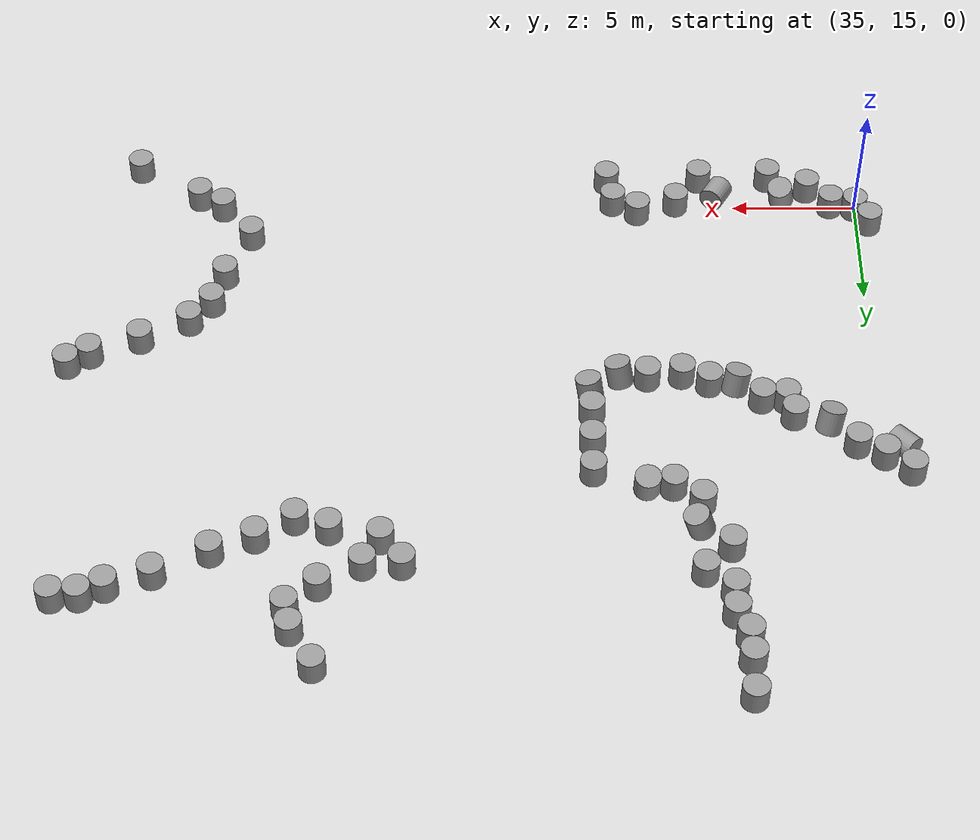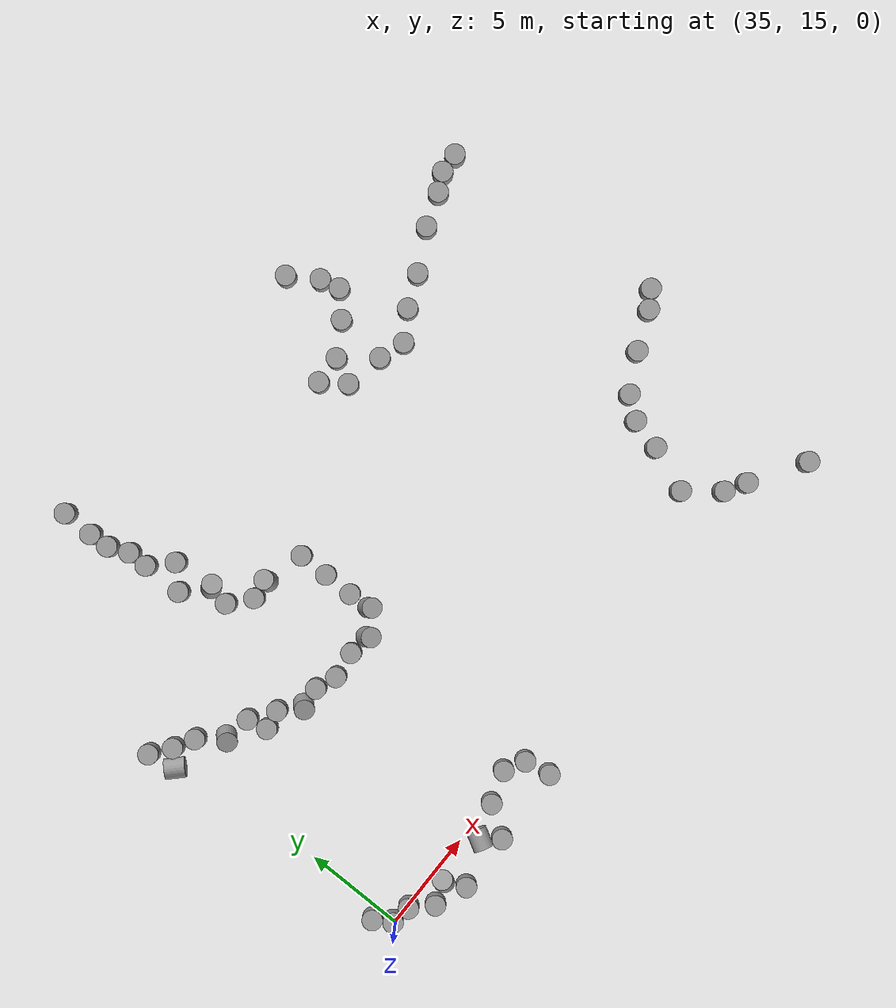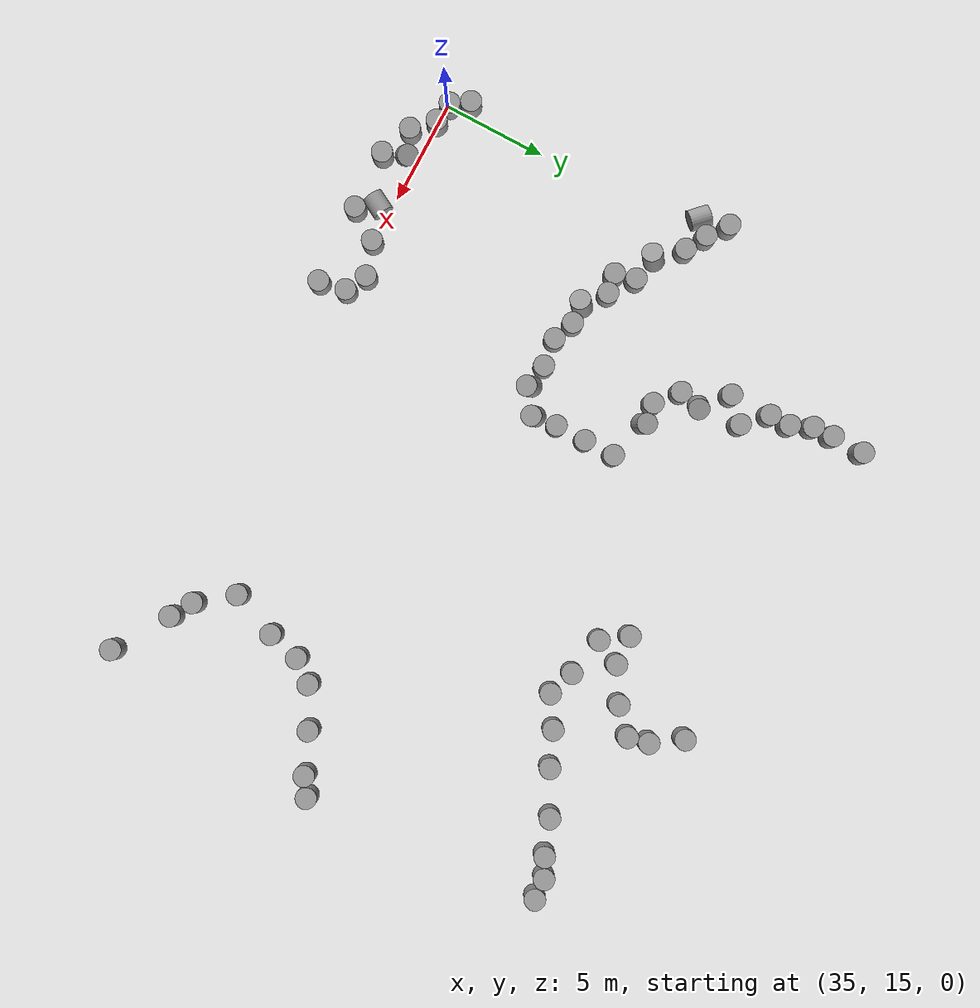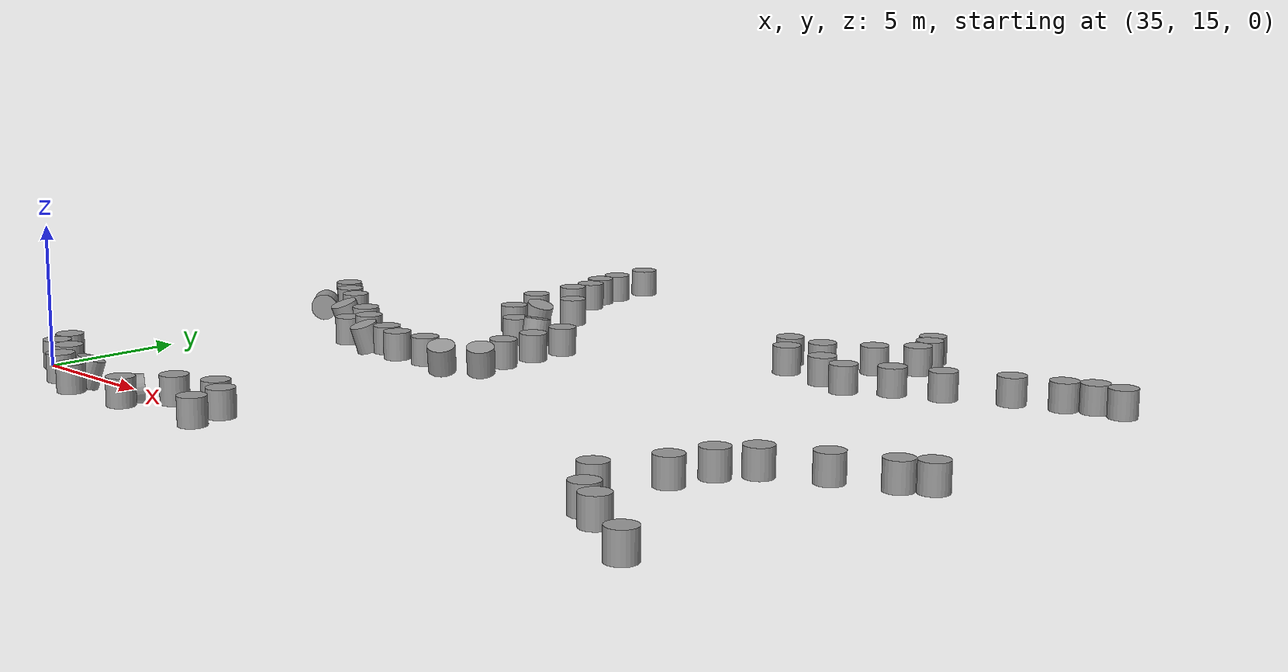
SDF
<sdf version="1.7">
 <world name="default">
  <model name="unit_cylinder_85_clone_244_clone_295">
   <pose>40.5537 39.571 0.450013 -8e-05 0.000484 0.000625</pose>
   <link name="link">
    <inertial>
     <mass>1</mass>
     <inertia><ixx>0.145833</ixx><ixy>0</ixy><ixz>0</ixz><iyy>0.145833</iyy><iyz>0</iyz><izz>0.125</izz></inertia>
    </inertial>
    <collision name="collision">
     <geometry><cylinder><radius>0.5</radius><length>1</length></cylinder></geometry>
    </collision>
    <visual name="visual">
     <geometry><cylinder><radius>0.5</radius><length>1</length></cylinder></geometry>
     <material>
      <script><name>Gazebo/Grey</name><uri>file://media/materials/scripts/gazebo.material</uri></script>
     </material>
    </visual>
   </link>
  </model>
  <model name="unit_cylinder_85_clone_244_clone_296">
   <pose>40.5282 38 0.450041 1e-06 4e-06 0.000413</pose>
   <link name="link">
    <inertial>
     <mass>1</mass>
     <inertia><ixx>0.145833</ixx><ixy>0</ixy><ixz>0</ixz><iyy>0.145833</iyy><iyz>0</iyz><izz>0.125</izz></inertia>
    </inertial>
    <collision name="collision">
     <geometry><cylinder><radius>0.5</radius><length>1</length></cylinder></geometry>
    </collision>
    <visual name="visual">
     <geometry><cylinder><radius>0.5</radius><length>1</length></cylinder></geometry>
     <material>
      <script><name>Gazebo/Grey</name><uri>file://media/materials/scripts/gazebo.material</uri></script>
     </material>
    </visual>
   </link>
  </model>
  <model name="unit_cylinder_85_clone_244_clone_297">
   <pose>40.5729 37.0006 0.450037 -1e-06 -1e-06 0.000417</pose>
   <link name="link">
    <inertial>
     <mass>1</mass>
     <inertia><ixx>0.145833</ixx><ixy>0</ixy><ixz>0</ixz><iyy>0.145833</iyy><iyz>0</iyz><izz>0.125</izz></inertia>
    </inertial>
    <collision name="collision">
     <geometry><cylinder><radius>0.5</radius><length>1</length></cylinder></geometry>
    </collision>
    <visual name="visual">
     <geometry><cylinder><radius>0.5</radius><length>1</length></cylinder></geometry>
     <material>
      <script><name>Gazebo/Grey</name><uri>file://media/materials/scripts/gazebo.material</uri></script>
     </material>
    </visual>
   </link>
  </model>
  <model name="unit_cylinder_85_clone_244_clone_298">
   <pose>41 36 0.450041 -4e-06 3e-06 0.00041</pose>
   <link name="link">
    <inertial>
     <mass>1</mass>
     <inertia><ixx>0.145833</ixx><ixy>0</ixy><ixz>0</ixz><iyy>0.145833</iyy><iyz>0</iyz><izz>0.125</izz></inertia>
    </inertial>
    <collision name="collision">
     <geometry><cylinder><radius>0.5</radius><length>1</length></cylinder></geometry>
    </collision>
    <visual name="visual">
     <geometry><cylinder><radius>0.5</radius><length>1</length></cylinder></geometry>
     <material>
      <script><name>Gazebo/Grey</name><uri>file://media/materials/scripts/gazebo.material</uri></script>
     </material>
    </visual>
   </link>
  </model>
  <model name="unit_cylinder_85_clone_244_clone_299">
   <pose>41 35 0.450036 -2e-06 -3e-06 0.000412</pose>
   <link name="link">
    <inertial>
     <mass>1</mass>
     <inertia><ixx>0.145833</ixx><ixy>0</ixy><ixz>0</ixz><iyy>0.145833</iyy><iyz>0</iyz><izz>0.125</izz></inertia>
    </inertial>
    <collision name="collision">
     <geometry><cylinder><radius>0.5</radius><length>1</length></cylinder></geometry>
    </collision>
    <visual name="visual">
     <geometry><cylinder><radius>0.5</radius><length>1</length></cylinder></geometry>
     <material>
      <script><name>Gazebo/Grey</name><uri>file://media/materials/scripts/gazebo.material</uri></script>
     </material>
    </visual>
   </link>
  </model>
  <model name="unit_cylinder_85_clone_244_clone_300">
   <pose>42.0001 34.0001 0.249998 -4e-06 -1e-06 0.000495</pose>
   <link name="link">
    <inertial>
     <mass>1</mass>
     <inertia><ixx>0.145833</ixx><ixy>0</ixy><ixz>0</ixz><iyy>0.145833</iyy><iyz>0</iyz><izz>0.125</izz></inertia>
    </inertial>
    <collision name="collision">
     <geometry><cylinder><radius>0.5</radius><length>1</length></cylinder></geometry>
    </collision>
    <visual name="visual">
     <geometry><cylinder><radius>0.5</radius><length>1</length></cylinder></geometry>
     <material>
      <script><name>Gazebo/Grey</name><uri>file://media/materials/scripts/gazebo.material</uri></script>
     </material>
    </visual>
   </link>
  </model>
  <model name="unit_cylinder_85_clone_244_clone_301">
   <pose>41 33.0001 0.450044 5e-06 -3e-06 0.000448</pose>
   <link name="link">
    <inertial>
     <mass>1</mass>
     <inertia><ixx>0.145833</ixx><ixy>0</ixy><ixz>0</ixz><iyy>0.145833</iyy><iyz>0</iyz><izz>0.125</izz></inertia>
    </inertial>
    <collision name="collision">
     <geometry><cylinder><radius>0.5</radius><length>1</length></cylinder></geometry>
    </collision>
    <visual name="visual">
     <geometry><cylinder><radius>0.5</radius><length>1</length></cylinder></geometry>
     <material>
      <script><name>Gazebo/Grey</name><uri>file://media/materials/scripts/gazebo.material</uri></script>
     </material>
    </visual>
   </link>
  </model>
  <model name="unit_cylinder_85_clone_244_clone_302">
   <pose>42.1534 31.9564 0.374456 -0.051886 0.292625 -0.01498</pose>
   <link name="link">
    <inertial>
     <mass>1</mass>
     <inertia><ixx>0.145833</ixx><ixy>0</ixy><ixz>0</ixz><iyy>0.145833</iyy><iyz>0</iyz><izz>0.125</izz></inertia>
    </inertial>
    <collision name="collision">
     <geometry><cylinder><radius>0.5</radius><length>1</length></cylinder></geometry>
    </collision>
    <visual name="visual">
     <geometry><cylinder><radius>0.5</radius><length>1</length></cylinder></geometry>
     <material>
      <script><name>Gazebo/Grey</name><uri>file://media/materials/scripts/gazebo.material</uri></script>
     </material>
    </visual>
   </link>
  </model>
  <model name="unit_cylinder_85_clone_244_clone_303">
   <pose>41.9724 30.8837 0.450022 -0.000131 0.000582 -0.062516</pose>
   <link name="link">
    <inertial>
     <mass>1</mass>
     <inertia><ixx>0.145833</ixx><ixy>0</ixy><ixz>0</ixz><iyy>0.145833</iyy><iyz>0</iyz><izz>0.125</izz></inertia>
    </inertial>
    <collision name="collision">
     <geometry><cylinder><radius>0.5</radius><length>1</length></cylinder></geometry>
    </collision>
    <visual name="visual">
     <geometry><cylinder><radius>0.5</radius><length>1</length></cylinder></geometry>
     <material>
      <script><name>Gazebo/Grey</name><uri>file://media/materials/scripts/gazebo.material</uri></script>
     </material>
    </visual>
   </link>
  </model>
  <model name="unit_cylinder_85_clone_244_clone_304">
   <pose>43.0011 29.9993 0.25 0 -0 -0.001746</pose>
   <link name="link">
    <inertial>
     <mass>1</mass>
     <inertia><ixx>0.145833</ixx><ixy>0</ixy><ixz>0</ixz><iyy>0.145833</iyy><iyz>0</iyz><izz>0.125</izz></inertia>
    </inertial>
    <collision name="collision">
     <geometry><cylinder><radius>0.5</radius><length>1</length></cylinder></geometry>
    </collision>
    <visual name="visual">
     <geometry><cylinder><radius>0.5</radius><length>1</length></cylinder></geometry>
     <material>
      <script><name>Gazebo/Grey</name><uri>file://media/materials/scripts/gazebo.material</uri></script>
     </material>
    </visual>
   </link>
  </model>
  <model name="unit_cylinder_85_clone_244_clone_305">
   <pose>43.9991 30.0861 0.337148 -0.194173 -0.008496 -0.005105</pose>
   <link name="link">
    <inertial>
     <mass>1</mass>
     <inertia><ixx>0.145833</ixx><ixy>0</ixy><ixz>0</ixz><iyy>0.145833</iyy><iyz>0</iyz><izz>0.125</izz></inertia>
    </inertial>
    <collision name="collision">
     <geometry><cylinder><radius>0.5</radius><length>1</length></cylinder></geometry>
    </collision>
    <visual name="visual">
     <geometry><cylinder><radius>0.5</radius><length>1</length></cylinder></geometry>
     <material>
      <script><name>Gazebo/Grey</name><uri>file://media/materials/scripts/gazebo.material</uri></script>
     </material>
    </visual>
   </link>
  </model>
  <model name="unit_cylinder_85_clone_244_clone_306">
   <pose>46.0048 29.4861 0.418494 -0.004475 0.008287 0.000426</pose>
   <link name="link">
    <inertial>
     <mass>1</mass>
     <inertia><ixx>0.145833</ixx><ixy>0</ixy><ixz>0</ixz><iyy>0.145833</iyy><iyz>0</iyz><izz>0.125</izz></inertia>
    </inertial>
    <collision name="collision">
     <geometry><cylinder><radius>0.5</radius><length>1</length></cylinder></geometry>
    </collision>
    <visual name="visual">
     <geometry><cylinder><radius>0.5</radius><length>1</length></cylinder></geometry>
     <material>
      <script><name>Gazebo/Grey</name><uri>file://media/materials/scripts/gazebo.material</uri></script>
     </material>
    </visual>
   </link>
  </model>
  <model name="unit_cylinder_85_clone_244_clone_307">
   <pose>46.0109 28.0009 0.423657 -0.002436 0.017699 0.000937</pose>
   <link name="link">
    <inertial>
     <mass>1</mass>
     <inertia><ixx>0.145833</ixx><ixy>0</ixy><ixz>0</ixz><iyy>0.145833</iyy><iyz>0</iyz><izz>0.125</izz></inertia>
    </inertial>
    <collision name="collision">
     <geometry><cylinder><radius>0.5</radius><length>1</length></cylinder></geometry>
    </collision>
    <visual name="visual">
     <geometry><cylinder><radius>0.5</radius><length>1</length></cylinder></geometry>
     <material>
      <script><name>Gazebo/Grey</name><uri>file://media/materials/scripts/gazebo.material</uri></script>
     </material>
    </visual>
   </link>
  </model>
  <model name="unit_cylinder_85_clone_244_clone_308">
   <pose>46.0135 26.5302 0.42587 -0.000536 0.022688 -1.4e-05</pose>
   <link name="link">
    <inertial>
     <mass>1</mass>
     <inertia><ixx>0.145833</ixx><ixy>0</ixy><ixz>0</ixz><iyy>0.145833</iyy><iyz>0</iyz><izz>0.125</izz></inertia>
    </inertial>
    <collision name="collision">
     <geometry><cylinder><radius>0.5</radius><length>1</length></cylinder></geometry>
    </collision>
    <visual name="visual">
     <geometry><cylinder><radius>0.5</radius><length>1</length></cylinder></geometry>
     <material>
      <script><name>Gazebo/Grey</name><uri>file://media/materials/scripts/gazebo.material</uri></script>
     </material>
    </visual>
   </link>
  </model>
  <model name="unit_cylinder_85_clone_244_clone_309">
   <pose>46.0853 25.3836 0.356962 0.185787 0.163245 -0.003407</pose>
   <link name="link">
    <inertial>
     <mass>1</mass>
     <inertia><ixx>0.145833</ixx><ixy>0</ixy><ixz>0</ixz><iyy>0.145833</iyy><iyz>0</iyz><izz>0.125</izz></inertia>
    </inertial>
    <collision name="collision">
     <geometry><cylinder><radius>0.5</radius><length>1</length></cylinder></geometry>
    </collision>
    <visual name="visual">
     <geometry><cylinder><radius>0.5</radius><length>1</length></cylinder></geometry>
     <material>
      <script><name>Gazebo/Grey</name><uri>file://media/materials/scripts/gazebo.material</uri></script>
     </material>
    </visual>
   </link>
  </model>
  <model name="unit_cylinder_85_clone_244_clone_310">
   <pose>44.9411 24.5635 0.376098 0.234916 0.191626 0.020711</pose>
   <link name="link">
    <inertial>
     <mass>1</mass>
     <inertia><ixx>0.145833</ixx><ixy>0</ixy><ixz>0</ixz><iyy>0.145833</iyy><iyz>0</iyz><izz>0.125</izz></inertia>
    </inertial>
    <collision name="collision">
     <geometry><cylinder><radius>0.5</radius><length>1</length></cylinder></geometry>
    </collision>
    <visual name="visual">
     <geometry><cylinder><radius>0.5</radius><length>1</length></cylinder></geometry>
     <material>
      <script><name>Gazebo/Grey</name><uri>file://media/materials/scripts/gazebo.material</uri></script>
     </material>
    </visual>
   </link>
  </model>
  <model name="unit_cylinder_85_clone_244_clone_311">
   <pose>43.8502 24.7343 0.462595 -0.007478 0.004585 -0.003434</pose>
   <link name="link">
    <inertial>
     <mass>1</mass>
     <inertia><ixx>0.145833</ixx><ixy>0</ixy><ixz>0</ixz><iyy>0.145833</iyy><iyz>0</iyz><izz>0.125</izz></inertia>
    </inertial>
    <collision name="collision">
     <geometry><cylinder><radius>0.5</radius><length>1</length></cylinder></geometry>
    </collision>
    <visual name="visual">
     <geometry><cylinder><radius>0.5</radius><length>1</length></cylinder></geometry>
     <material>
      <script><name>Gazebo/Grey</name><uri>file://media/materials/scripts/gazebo.material</uri></script>
     </material>
    </visual>
   </link>
  </model>
  <model name="unit_cylinder_85_clone_244_clone_312">
   <pose>42.5154 24.583 0.46502 -0.001083 -0.009198 0.000655</pose>
   <link name="link">
    <inertial>
     <mass>1</mass>
     <inertia><ixx>0.145833</ixx><ixy>0</ixy><ixz>0</ixz><iyy>0.145833</iyy><iyz>0</iyz><izz>0.125</izz></inertia>
    </inertial>
    <collision name="collision">
     <geometry><cylinder><radius>0.5</radius><length>1</length></cylinder></geometry>
    </collision>
    <visual name="visual">
     <geometry><cylinder><radius>0.5</radius><length>1</length></cylinder></geometry>
     <material>
      <script><name>Gazebo/Grey</name><uri>file://media/materials/scripts/gazebo.material</uri></script>
     </material>
    </visual>
   </link>
  </model>
  <model name="unit_cylinder_85_clone_244_clone_313">
   <pose>40.4163 24.9113 0.370897 0.256898 -0.128116 -0.036424</pose>
   <link name="link">
    <inertial>
     <mass>1</mass>
     <inertia><ixx>0.145833</ixx><ixy>0</ixy><ixz>0</ixz><iyy>0.145833</iyy><iyz>0</iyz><izz>0.125</izz></inertia>
    </inertial>
    <collision name="collision">
     <geometry><cylinder><radius>0.5</radius><length>1</length></cylinder></geometry>
    </collision>
    <visual name="visual">
     <geometry><cylinder><radius>0.5</radius><length>1</length></cylinder></geometry>
     <material>
      <script><name>Gazebo/Grey</name><uri>file://media/materials/scripts/gazebo.material</uri></script>
     </material>
    </visual>
   </link>
  </model>
  <model name="unit_cylinder_85_clone_244_clone_314">
   <pose>41.4733 24.9863 0.454847 -0.002822 -0.008649 0.03423</pose>
   <link name="link">
    <inertial>
     <mass>1</mass>
     <inertia><ixx>0.145833</ixx><ixy>0</ixy><ixz>0</ixz><iyy>0.145833</iyy><iyz>0</iyz><izz>0.125</izz></inertia>
    </inertial>
    <collision name="collision">
     <geometry><cylinder><radius>0.5</radius><length>1</length></cylinder></geometry>
    </collision>
    <visual name="visual">
     <geometry><cylinder><radius>0.5</radius><length>1</length></cylinder></geometry>
     <material>
      <script><name>Gazebo/Grey</name><uri>file://media/materials/scripts/gazebo.material</uri></script>
     </material>
    </visual>
   </link>
  </model>
  <model name="unit_cylinder_85_clone_244_clone_315">
   <pose>39.4846 25.7874 0.449978 0.004514 -0.002515 0.018176</pose>
   <link name="link">
    <inertial>
     <mass>1</mass>
     <inertia><ixx>0.145833</ixx><ixy>0</ixy><ixz>0</ixz><iyy>0.145833</iyy><iyz>0</iyz><izz>0.125</izz></inertia>
    </inertial>
    <collision name="collision">
     <geometry><cylinder><radius>0.5</radius><length>1</length></cylinder></geometry>
    </collision>
    <visual name="visual">
     <geometry><cylinder><radius>0.5</radius><length>1</length></cylinder></geometry>
     <material>
      <script><name>Gazebo/Grey</name><uri>file://media/materials/scripts/gazebo.material</uri></script>
     </material>
    </visual>
   </link>
  </model>
  <model name="unit_cylinder_85_clone_244_clone_316">
   <pose>38.2894 26.6248 0.449993 -2.7e-05 7e-06 -0.089148</pose>
   <link name="link">
    <inertial>
     <mass>1</mass>
     <inertia><ixx>0.145833</ixx><ixy>0</ixy><ixz>0</ixz><iyy>0.145833</iyy><iyz>0</iyz><izz>0.125</izz></inertia>
    </inertial>
    <collision name="collision">
     <geometry><cylinder><radius>0.5</radius><length>1</length></cylinder></geometry>
    </collision>
    <visual name="visual">
     <geometry><cylinder><radius>0.5</radius><length>1</length></cylinder></geometry>
     <material>
      <script><name>Gazebo/Grey</name><uri>file://media/materials/scripts/gazebo.material</uri></script>
     </material>
    </visual>
   </link>
  </model>
  <model name="unit_cylinder_85_clone_244_clone_317">
   <pose>38.4976 25.6207 0.249994 5e-06 -1.4e-05 0.091965</pose>
   <link name="link">
    <inertial>
     <mass>1</mass>
     <inertia><ixx>0.145833</ixx><ixy>0</ixy><ixz>0</ixz><iyy>0.145833</iyy><iyz>0</iyz><izz>0.125</izz></inertia>
    </inertial>
    <collision name="collision">
     <geometry><cylinder><radius>0.5</radius><length>1</length></cylinder></geometry>
    </collision>
    <visual name="visual">
     <geometry><cylinder><radius>0.5</radius><length>1</length></cylinder></geometry>
     <material>
      <script><name>Gazebo/Grey</name><uri>file://media/materials/scripts/gazebo.material</uri></script>
     </material>
    </visual>
   </link>
  </model>
  <model name="unit_cylinder_85_clone_244_clone_318">
   <pose>36.9251 26.8515 0.386206 0.299002 -0.150563 -0.036213</pose>
   <link name="link">
    <inertial>
     <mass>1</mass>
     <inertia><ixx>0.145833</ixx><ixy>0</ixy><ixz>0</ixz><iyy>0.145833</iyy><iyz>0</iyz><izz>0.125</izz></inertia>
    </inertial>
    <collision name="collision">
     <geometry><cylinder><radius>0.5</radius><length>1</length></cylinder></geometry>
    </collision>
    <visual name="visual">
     <geometry><cylinder><radius>0.5</radius><length>1</length></cylinder></geometry>
     <material>
      <script><name>Gazebo/Grey</name><uri>file://media/materials/scripts/gazebo.material</uri></script>
     </material>
    </visual>
   </link>
  </model>
  <model name="unit_cylinder_85_clone_244_clone_319">
   <pose>35.9999 28 0.449996 -8e-06 1e-06 0.00049</pose>
   <link name="link">
    <inertial>
     <mass>1</mass>
     <inertia><ixx>0.145833</ixx><ixy>0</ixy><ixz>0</ixz><iyy>0.145833</iyy><iyz>0</iyz><izz>0.125</izz></inertia>
    </inertial>
    <collision name="collision">
     <geometry><cylinder><radius>0.5</radius><length>1</length></cylinder></geometry>
    </collision>
    <visual name="visual">
     <geometry><cylinder><radius>0.5</radius><length>1</length></cylinder></geometry>
     <material>
      <script><name>Gazebo/Grey</name><uri>file://media/materials/scripts/gazebo.material</uri></script>
     </material>
    </visual>
   </link>
  </model>
  <model name="unit_cylinder_85_clone_244_clone_320">
   <pose>35.0013 28.5601 0.45 -7e-06 1.1e-05 0.002</pose>
   <link name="link">
    <inertial>
     <mass>1</mass>
     <inertia><ixx>0.145833</ixx><ixy>0</ixy><ixz>0</ixz><iyy>0.145833</iyy><iyz>0</iyz><izz>0.125</izz></inertia>
    </inertial>
    <collision name="collision">
     <geometry><cylinder><radius>0.5</radius><length>1</length></cylinder></geometry>
    </collision>
    <visual name="visual">
     <geometry><cylinder><radius>0.5</radius><length>1</length></cylinder></geometry>
     <material>
      <script><name>Gazebo/Grey</name><uri>file://media/materials/scripts/gazebo.material</uri></script>
     </material>
    </visual>
   </link>
  </model>
  <model name="unit_cylinder_85_clone_244_clone_321">
   <pose>34.0471 29.2903 0.45 0 -0 0.000353</pose>
   <link name="link">
    <inertial>
     <mass>1</mass>
     <inertia><ixx>0.145833</ixx><ixy>0</ixy><ixz>0</ixz><iyy>0.145833</iyy><iyz>0</iyz><izz>0.125</izz></inertia>
    </inertial>
    <collision name="collision">
     <geometry><cylinder><radius>0.5</radius><length>1</length></cylinder></geometry>
    </collision>
    <visual name="visual">
     <geometry><cylinder><radius>0.5</radius><length>1</length></cylinder></geometry>
     <material>
      <script><name>Gazebo/Grey</name><uri>file://media/materials/scripts/gazebo.material</uri></script>
     </material>
    </visual>
   </link>
  </model>
  <model name="unit_cylinder_85_clone_244_clone_378">
   <pose>56.0001 38.4231 0.24999 0 -0 0.000512</pose>
   <link name="link">
    <inertial>
     <mass>1</mass>
     <inertia><ixx>0.145833</ixx><ixy>0</ixy><ixz>0</ixz><iyy>0.145833</iyy><iyz>0</iyz><izz>0.125</izz></inertia>
    </inertial>
    <collision name="collision">
     <geometry><cylinder><radius>0.5</radius><length>1</length></cylinder></geometry>
    </collision>
    <visual name="visual">
     <geometry><cylinder><radius>0.5</radius><length>1</length></cylinder></geometry>
     <material>
      <script><name>Gazebo/Grey</name><uri>file://media/materials/scripts/gazebo.material</uri></script>
     </material>
    </visual>
   </link>
  </model>
  <model name="unit_cylinder_85_clone_244_clone_379">
   <pose>56.8927 36.9966 0.451261 -1.2e-05 6.2e-05 -0.000634</pose>
   <link name="link">
    <inertial>
     <mass>1</mass>
     <inertia><ixx>0.145833</ixx><ixy>0</ixy><ixz>0</ixz><iyy>0.145833</iyy><iyz>0</iyz><izz>0.125</izz></inertia>
    </inertial>
    <collision name="collision">
     <geometry><cylinder><radius>0.5</radius><length>1</length></cylinder></geometry>
    </collision>
    <visual name="visual">
     <geometry><cylinder><radius>0.5</radius><length>1</length></cylinder></geometry>
     <material>
      <script><name>Gazebo/Grey</name><uri>file://media/materials/scripts/gazebo.material</uri></script>
     </material>
    </visual>
   </link>
  </model>
  <model name="unit_cylinder_85_clone_244_clone_380">
   <pose>57.1112 36.0208 0.451265 -1.5e-05 6.3e-05 0.00069</pose>
   <link name="link">
    <inertial>
     <mass>1</mass>
     <inertia><ixx>0.145833</ixx><ixy>0</ixy><ixz>0</ixz><iyy>0.145833</iyy><iyz>0</iyz><izz>0.125</izz></inertia>
    </inertial>
    <collision name="collision">
     <geometry><cylinder><radius>0.5</radius><length>1</length></cylinder></geometry>
    </collision>
    <visual name="visual">
     <geometry><cylinder><radius>0.5</radius><length>1</length></cylinder></geometry>
     <material>
      <script><name>Gazebo/Grey</name><uri>file://media/materials/scripts/gazebo.material</uri></script>
     </material>
    </visual>
   </link>
  </model>
  <model name="unit_cylinder_85_clone_244_clone_381">
   <pose>56 34.9999 0.451258 4.8e-05 1.3e-05 0.000584</pose>
   <link name="link">
    <inertial>
     <mass>1</mass>
     <inertia><ixx>0.145833</ixx><ixy>0</ixy><ixz>0</ixz><iyy>0.145833</iyy><iyz>0</iyz><izz>0.125</izz></inertia>
    </inertial>
    <collision name="collision">
     <geometry><cylinder><radius>0.5</radius><length>1</length></cylinder></geometry>
    </collision>
    <visual name="visual">
     <geometry><cylinder><radius>0.5</radius><length>1</length></cylinder></geometry>
     <material>
      <script><name>Gazebo/Grey</name><uri>file://media/materials/scripts/gazebo.material</uri></script>
     </material>
    </visual>
   </link>
  </model>
  <model name="unit_cylinder_85_clone_244_clone_382">
   <pose>52.9997 34.0002 0.451281 2.6e-05 7.2e-05 -5.9e-05</pose>
   <link name="link">
    <inertial>
     <mass>1</mass>
     <inertia><ixx>0.145833</ixx><ixy>0</ixy><ixz>0</ixz><iyy>0.145833</iyy><iyz>0</iyz><izz>0.125</izz></inertia>
    </inertial>
    <collision name="collision">
     <geometry><cylinder><radius>0.5</radius><length>1</length></cylinder></geometry>
    </collision>
    <visual name="visual">
     <geometry><cylinder><radius>0.5</radius><length>1</length></cylinder></geometry>
     <material>
      <script><name>Gazebo/Grey</name><uri>file://media/materials/scripts/gazebo.material</uri></script>
     </material>
    </visual>
   </link>
  </model>
  <model name="unit_cylinder_85_clone_244_clone_383">
   <pose>55.7286 32.4377 0.451265 -1.1e-05 -6e-06 0.000447</pose>
   <link name="link">
    <inertial>
     <mass>1</mass>
     <inertia><ixx>0.145833</ixx><ixy>0</ixy><ixz>0</ixz><iyy>0.145833</iyy><iyz>0</iyz><izz>0.125</izz></inertia>
    </inertial>
    <collision name="collision">
     <geometry><cylinder><radius>0.5</radius><length>1</length></cylinder></geometry>
    </collision>
    <visual name="visual">
     <geometry><cylinder><radius>0.5</radius><length>1</length></cylinder></geometry>
     <material>
      <script><name>Gazebo/Grey</name><uri>file://media/materials/scripts/gazebo.material</uri></script>
     </material>
    </visual>
   </link>
  </model>
  <model name="unit_cylinder_85_clone_244_clone_384">
   <pose>57.0007 31.9999 0.451136 2.7e-05 0.000994 0.000649</pose>
   <link name="link">
    <inertial>
     <mass>1</mass>
     <inertia><ixx>0.145833</ixx><ixy>0</ixy><ixz>0</ixz><iyy>0.145833</iyy><iyz>0</iyz><izz>0.125</izz></inertia>
    </inertial>
    <collision name="collision">
     <geometry><cylinder><radius>0.5</radius><length>1</length></cylinder></geometry>
    </collision>
    <visual name="visual">
     <geometry><cylinder><radius>0.5</radius><length>1</length></cylinder></geometry>
     <material>
      <script><name>Gazebo/Grey</name><uri>file://media/materials/scripts/gazebo.material</uri></script>
     </material>
    </visual>
   </link>
  </model>
  <model name="unit_cylinder_85_clone_244_clone_385">
   <pose>53.8189 32.8382 0.451265 -4.2e-05 2.5e-05 -0.001448</pose>
   <link name="link">
    <inertial>
     <mass>1</mass>
     <inertia><ixx>0.145833</ixx><ixy>0</ixy><ixz>0</ixz><iyy>0.145833</iyy><iyz>0</iyz><izz>0.125</izz></inertia>
    </inertial>
    <collision name="collision">
     <geometry><cylinder><radius>0.5</radius><length>1</length></cylinder></geometry>
    </collision>
    <visual name="visual">
     <geometry><cylinder><radius>0.5</radius><length>1</length></cylinder></geometry>
     <material>
      <script><name>Gazebo/Grey</name><uri>file://media/materials/scripts/gazebo.material</uri></script>
     </material>
    </visual>
   </link>
  </model>
  <model name="unit_cylinder_85_clone_244_clone_386">
   <pose>54.4259 34.0506 0.451216 -2.1e-05 -1.1e-05 0.00043</pose>
   <link name="link">
    <inertial>
     <mass>1</mass>
     <inertia><ixx>0.145833</ixx><ixy>0</ixy><ixz>0</ixz><iyy>0.145833</iyy><iyz>0</iyz><izz>0.125</izz></inertia>
    </inertial>
    <collision name="collision">
     <geometry><cylinder><radius>0.5</radius><length>1</length></cylinder></geometry>
    </collision>
    <visual name="visual">
     <geometry><cylinder><radius>0.5</radius><length>1</length></cylinder></geometry>
     <material>
      <script><name>Gazebo/Grey</name><uri>file://media/materials/scripts/gazebo.material</uri></script>
     </material>
    </visual>
   </link>
  </model>
  <model name="unit_cylinder_85_clone_244_clone_397">
   <pose>66.3707 24.3766 0.430656 -0.004178 -0.000346 0.006588</pose>
   <link name="link">
    <inertial>
     <mass>1</mass>
     <inertia><ixx>0.145833</ixx><ixy>0</ixy><ixz>0</ixz><iyy>0.145833</iyy><iyz>0</iyz><izz>0.125</izz></inertia>
    </inertial>
    <collision name="collision">
     <geometry><cylinder><radius>0.5</radius><length>1</length></cylinder></geometry>
    </collision>
    <visual name="visual">
     <geometry><cylinder><radius>0.5</radius><length>1</length></cylinder></geometry>
     <material>
      <script><name>Gazebo/Grey</name><uri>file://media/materials/scripts/gazebo.material</uri></script>
     </material>
    </visual>
   </link>
  </model>
  <model name="unit_cylinder_85_clone_244_clone_398">
   <pose>65.5351 23.8243 0.432484 -0.002981 0.000142 0.001818</pose>
   <link name="link">
    <inertial>
     <mass>1</mass>
     <inertia><ixx>0.145833</ixx><ixy>0</ixy><ixz>0</ixz><iyy>0.145833</iyy><iyz>0</iyz><izz>0.125</izz></inertia>
    </inertial>
    <collision name="collision">
     <geometry><cylinder><radius>0.5</radius><length>1</length></cylinder></geometry>
    </collision>
    <visual name="visual">
     <geometry><cylinder><radius>0.5</radius><length>1</length></cylinder></geometry>
     <material>
      <script><name>Gazebo/Grey</name><uri>file://media/materials/scripts/gazebo.material</uri></script>
     </material>
    </visual>
   </link>
  </model>
  <model name="unit_cylinder_85_clone_244_clone_399">
   <pose>63.647 23.0205 0.43513 -0.002981 0.000131 0.000395</pose>
   <link name="link">
    <inertial>
     <mass>1</mass>
     <inertia><ixx>0.145833</ixx><ixy>0</ixy><ixz>0</ixz><iyy>0.145833</iyy><iyz>0</iyz><izz>0.125</izz></inertia>
    </inertial>
    <collision name="collision">
     <geometry><cylinder><radius>0.5</radius><length>1</length></cylinder></geometry>
    </collision>
    <visual name="visual">
     <geometry><cylinder><radius>0.5</radius><length>1</length></cylinder></geometry>
     <material>
      <script><name>Gazebo/Grey</name><uri>file://media/materials/scripts/gazebo.material</uri></script>
     </material>
    </visual>
   </link>
  </model>
  <model name="unit_cylinder_85_clone_244_clone_400">
   <pose>61.8014 22.0279 0.438338 -0.002985 0.000133 0.000364</pose>
   <link name="link">
    <inertial>
     <mass>1</mass>
     <inertia><ixx>0.145833</ixx><ixy>0</ixy><ixz>0</ixz><iyy>0.145833</iyy><iyz>0</iyz><izz>0.125</izz></inertia>
    </inertial>
    <collision name="collision">
     <geometry><cylinder><radius>0.5</radius><length>1</length></cylinder></geometry>
    </collision>
    <visual name="visual">
     <geometry><cylinder><radius>0.5</radius><length>1</length></cylinder></geometry>
     <material>
      <script><name>Gazebo/Grey</name><uri>file://media/materials/scripts/gazebo.material</uri></script>
     </material>
    </visual>
   </link>
  </model>
  <model name="unit_cylinder_85_clone_244_clone_401">
   <pose>60.9985 21.0009 0.438739 -0.001258 -0.001856 0.000271</pose>
   <link name="link">
    <inertial>
     <mass>1</mass>
     <inertia><ixx>0.145833</ixx><ixy>0</ixy><ixz>0</ixz><iyy>0.145833</iyy><iyz>0</iyz><izz>0.125</izz></inertia>
    </inertial>
    <collision name="collision">
     <geometry><cylinder><radius>0.5</radius><length>1</length></cylinder></geometry>
    </collision>
    <visual name="visual">
     <geometry><cylinder><radius>0.5</radius><length>1</length></cylinder></geometry>
     <material>
      <script><name>Gazebo/Grey</name><uri>file://media/materials/scripts/gazebo.material</uri></script>
     </material>
    </visual>
   </link>
  </model>
  <model name="unit_cylinder_85_clone_244_clone_402">
   <pose>60.5985 19.4473 0.439035 -7.1e-05 -0.00088 0.000426</pose>
   <link name="link">
    <inertial>
     <mass>1</mass>
     <inertia><ixx>0.145833</ixx><ixy>0</ixy><ixz>0</ixz><iyy>0.145833</iyy><iyz>0</iyz><izz>0.125</izz></inertia>
    </inertial>
    <collision name="collision">
     <geometry><cylinder><radius>0.5</radius><length>1</length></cylinder></geometry>
    </collision>
    <visual name="visual">
     <geometry><cylinder><radius>0.5</radius><length>1</length></cylinder></geometry>
     <material>
      <script><name>Gazebo/Grey</name><uri>file://media/materials/scripts/gazebo.material</uri></script>
     </material>
    </visual>
   </link>
  </model>
  <model name="unit_cylinder_85_clone_244_clone_403">
   <pose>59.7097 17.243 0.478824 -0.007009 -0.001373 -0.002716</pose>
   <link name="link">
    <inertial>
     <mass>1</mass>
     <inertia><ixx>0.145833</ixx><ixy>0</ixy><ixz>0</ixz><iyy>0.145833</iyy><iyz>0</iyz><izz>0.125</izz></inertia>
    </inertial>
    <collision name="collision">
     <geometry><cylinder><radius>0.5</radius><length>1</length></cylinder></geometry>
    </collision>
    <visual name="visual">
     <geometry><cylinder><radius>0.5</radius><length>1</length></cylinder></geometry>
     <material>
      <script><name>Gazebo/Grey</name><uri>file://media/materials/scripts/gazebo.material</uri></script>
     </material>
    </visual>
   </link>
  </model>
  <model name="unit_cylinder_85_clone_244_clone_404">
   <pose>60.9883 15.6143 0.489696 -0.000864 0.001406 0.000388</pose>
   <link name="link">
    <inertial>
     <mass>1</mass>
     <inertia><ixx>0.145833</ixx><ixy>0</ixy><ixz>0</ixz><iyy>0.145833</iyy><iyz>0</iyz><izz>0.125</izz></inertia>
    </inertial>
    <collision name="collision">
     <geometry><cylinder><radius>0.5</radius><length>1</length></cylinder></geometry>
    </collision>
    <visual name="visual">
     <geometry><cylinder><radius>0.5</radius><length>1</length></cylinder></geometry>
     <material>
      <script><name>Gazebo/Grey</name><uri>file://media/materials/scripts/gazebo.material</uri></script>
     </material>
    </visual>
   </link>
  </model>
  <model name="unit_cylinder_85_clone_244_clone_405">
   <pose>62.001 15.0007 0.488805 -0.000865 0.001401 0.000588</pose>
   <link name="link">
    <inertial>
     <mass>1</mass>
     <inertia><ixx>0.145833</ixx><ixy>0</ixy><ixz>0</ixz><iyy>0.145833</iyy><iyz>0</iyz><izz>0.125</izz></inertia>
    </inertial>
    <collision name="collision">
     <geometry><cylinder><radius>0.5</radius><length>1</length></cylinder></geometry>
    </collision>
    <visual name="visual">
     <geometry><cylinder><radius>0.5</radius><length>1</length></cylinder></geometry>
     <material>
      <script><name>Gazebo/Grey</name><uri>file://media/materials/scripts/gazebo.material</uri></script>
     </material>
    </visual>
   </link>
  </model>
  <model name="unit_cylinder_85_clone_244_clone_406">
   <pose>64.6035 13.3401 0.486518 -0.002408 0.001454 -0.311609</pose>
   <link name="link">
    <inertial>
     <mass>1</mass>
     <inertia><ixx>0.145833</ixx><ixy>0</ixy><ixz>0</ixz><iyy>0.145833</iyy><iyz>0</iyz><izz>0.125</izz></inertia>
    </inertial>
    <collision name="collision">
     <geometry><cylinder><radius>0.5</radius><length>1</length></cylinder></geometry>
    </collision>
    <visual name="visual">
     <geometry><cylinder><radius>0.5</radius><length>1</length></cylinder></geometry>
     <material>
      <script><name>Gazebo/Grey</name><uri>file://media/materials/scripts/gazebo.material</uri></script>
     </material>
    </visual>
   </link>
  </model>
  <model name="unit_cylinder_85_clone_244_clone_469">
   <pose>45.2248 13.7084 0.451307 -3e-06 -2e-05 0.000436</pose>
   <link name="link">
    <inertial>
     <mass>1</mass>
     <inertia><ixx>0.145833</ixx><ixy>0</ixy><ixz>0</ixz><iyy>0.145833</iyy><iyz>0</iyz><izz>0.125</izz></inertia>
    </inertial>
    <collision name="collision">
     <geometry><cylinder><radius>0.5</radius><length>1</length></cylinder></geometry>
    </collision>
    <visual name="visual">
     <geometry><cylinder><radius>0.5</radius><length>1</length></cylinder></geometry>
     <material>
      <script><name>Gazebo/Grey</name><uri>file://media/materials/scripts/gazebo.material</uri></script>
     </material>
    </visual>
   </link>
  </model>
  <model name="unit_cylinder_85_clone_244_clone_470">
   <pose>45 15 0.451303 -2.3e-05 -2.2e-05 0.000438</pose>
   <link name="link">
    <inertial>
     <mass>1</mass>
     <inertia><ixx>0.145833</ixx><ixy>0</ixy><ixz>0</ixz><iyy>0.145833</iyy><iyz>0</iyz><izz>0.125</izz></inertia>
    </inertial>
    <collision name="collision">
     <geometry><cylinder><radius>0.5</radius><length>1</length></cylinder></geometry>
    </collision>
    <visual name="visual">
     <geometry><cylinder><radius>0.5</radius><length>1</length></cylinder></geometry>
     <material>
      <script><name>Gazebo/Grey</name><uri>file://media/materials/scripts/gazebo.material</uri></script>
     </material>
    </visual>
   </link>
  </model>
  <model name="unit_cylinder_85_clone_244_clone_471">
   <pose>44 15.5302 0.451276 1.1e-05 -3.3e-05 0.000465</pose>
   <link name="link">
    <inertial>
     <mass>1</mass>
     <inertia><ixx>0.145833</ixx><ixy>0</ixy><ixz>0</ixz><iyy>0.145833</iyy><iyz>0</iyz><izz>0.125</izz></inertia>
    </inertial>
    <collision name="collision">
     <geometry><cylinder><radius>0.5</radius><length>1</length></cylinder></geometry>
    </collision>
    <visual name="visual">
     <geometry><cylinder><radius>0.5</radius><length>1</length></cylinder></geometry>
     <material>
      <script><name>Gazebo/Grey</name><uri>file://media/materials/scripts/gazebo.material</uri></script>
     </material>
    </visual>
   </link>
  </model>
  <model name="unit_cylinder_85_clone_244_clone_472">
   <pose>42.4114 15 0.451269 1.9e-05 2.7e-05 0.00041</pose>
   <link name="link">
    <inertial>
     <mass>1</mass>
     <inertia><ixx>0.145833</ixx><ixy>0</ixy><ixz>0</ixz><iyy>0.145833</iyy><iyz>0</iyz><izz>0.125</izz></inertia>
    </inertial>
    <collision name="collision">
     <geometry><cylinder><radius>0.5</radius><length>1</length></cylinder></geometry>
    </collision>
    <visual name="visual">
     <geometry><cylinder><radius>0.5</radius><length>1</length></cylinder></geometry>
     <material>
      <script><name>Gazebo/Grey</name><uri>file://media/materials/scripts/gazebo.material</uri></script>
     </material>
    </visual>
   </link>
  </model>
  <model name="unit_cylinder_85_clone_244_clone_473">
   <pose>41.4092 13.5667 0.451275 3.6e-05 3.1e-05 0.000915</pose>
   <link name="link">
    <inertial>
     <mass>1</mass>
     <inertia><ixx>0.145833</ixx><ixy>0</ixy><ixz>0</ixz><iyy>0.145833</iyy><iyz>0</iyz><izz>0.125</izz></inertia>
    </inertial>
    <collision name="collision">
     <geometry><cylinder><radius>0.5</radius><length>1</length></cylinder></geometry>
    </collision>
    <visual name="visual">
     <geometry><cylinder><radius>0.5</radius><length>1</length></cylinder></geometry>
     <material>
      <script><name>Gazebo/Grey</name><uri>file://media/materials/scripts/gazebo.material</uri></script>
     </material>
    </visual>
   </link>
  </model>
  <model name="unit_cylinder_85_clone_244_clone_615">
   <pose>65.5343 35.6833 0.450386 0.001004 0.000474 -0.026875</pose>
   <link name="link">
    <inertial>
     <mass>1</mass>
     <inertia><ixx>0.145833</ixx><ixy>0</ixy><ixz>0</ixz><iyy>0.145833</iyy><iyz>0</iyz><izz>0.125</izz></inertia>
    </inertial>
    <collision name="collision">
     <geometry><cylinder><radius>0.5</radius><length>1</length></cylinder></geometry>
    </collision>
    <visual name="visual">
     <geometry><cylinder><radius>0.5</radius><length>1</length></cylinder></geometry>
     <material>
      <script><name>Gazebo/Grey</name><uri>file://media/materials/scripts/gazebo.material</uri></script>
     </material>
    </visual>
   </link>
  </model>
  <model name="unit_cylinder_85_clone_244_clone_616">
   <pose>63.6359 35.185 0.450736 0.001151 0.000512 0.006632</pose>
   <link name="link">
    <inertial>
     <mass>1</mass>
     <inertia><ixx>0.145833</ixx><ixy>0</ixy><ixz>0</ixz><iyy>0.145833</iyy><iyz>0</iyz><izz>0.125</izz></inertia>
    </inertial>
    <collision name="collision">
     <geometry><cylinder><radius>0.5</radius><length>1</length></cylinder></geometry>
    </collision>
    <visual name="visual">
     <geometry><cylinder><radius>0.5</radius><length>1</length></cylinder></geometry>
     <material>
      <script><name>Gazebo/Grey</name><uri>file://media/materials/scripts/gazebo.material</uri></script>
     </material>
    </visual>
   </link>
  </model>
  <model name="unit_cylinder_85_clone_244_clone_617">
   <pose>62.0004 34.5945 0.4509 0.001114 0.000507 0.00048</pose>
   <link name="link">
    <inertial>
     <mass>1</mass>
     <inertia><ixx>0.145833</ixx><ixy>0</ixy><ixz>0</ixz><iyy>0.145833</iyy><iyz>0</iyz><izz>0.125</izz></inertia>
    </inertial>
    <collision name="collision">
     <geometry><cylinder><radius>0.5</radius><length>1</length></cylinder></geometry>
    </collision>
    <visual name="visual">
     <geometry><cylinder><radius>0.5</radius><length>1</length></cylinder></geometry>
     <material>
      <script><name>Gazebo/Grey</name><uri>file://media/materials/scripts/gazebo.material</uri></script>
     </material>
    </visual>
   </link>
  </model>
  <model name="unit_cylinder_85_clone_244_clone_618">
   <pose>60.0003 33.5425 0.45073 0.001157 0.000523 0.000543</pose>
   <link name="link">
    <inertial>
     <mass>1</mass>
     <inertia><ixx>0.145833</ixx><ixy>0</ixy><ixz>0</ixz><iyy>0.145833</iyy><iyz>0</iyz><izz>0.125</izz></inertia>
    </inertial>
    <collision name="collision">
     <geometry><cylinder><radius>0.5</radius><length>1</length></cylinder></geometry>
    </collision>
    <visual name="visual">
     <geometry><cylinder><radius>0.5</radius><length>1</length></cylinder></geometry>
     <material>
      <script><name>Gazebo/Grey</name><uri>file://media/materials/scripts/gazebo.material</uri></script>
     </material>
    </visual>
   </link>
  </model>
  <model name="unit_cylinder_85_clone_244_clone_619">
   <pose>58.3952 32.8683 0.450794 0.001155 0.000524 0.000497</pose>
   <link name="link">
    <inertial>
     <mass>1</mass>
     <inertia><ixx>0.145833</ixx><ixy>0</ixy><ixz>0</ixz><iyy>0.145833</iyy><iyz>0</iyz><izz>0.125</izz></inertia>
    </inertial>
    <collision name="collision">
     <geometry><cylinder><radius>0.5</radius><length>1</length></cylinder></geometry>
    </collision>
    <visual name="visual">
     <geometry><cylinder><radius>0.5</radius><length>1</length></cylinder></geometry>
     <material>
      <script><name>Gazebo/Grey</name><uri>file://media/materials/scripts/gazebo.material</uri></script>
     </material>
    </visual>
   </link>
  </model>
  <model name="unit_cylinder_85_clone_244_clone_620">
   <pose>64.5354 35.6242 0.450764 0.001075 0.000667 -0.130072</pose>
   <link name="link">
    <inertial>
     <mass>1</mass>
     <inertia><ixx>0.145833</ixx><ixy>0</ixy><ixz>0</ixz><iyy>0.145833</iyy><iyz>0</iyz><izz>0.125</izz></inertia>
    </inertial>
    <collision name="collision">
     <geometry><cylinder><radius>0.5</radius><length>1</length></cylinder></geometry>
    </collision>
    <visual name="visual">
     <geometry><cylinder><radius>0.5</radius><length>1</length></cylinder></geometry>
     <material>
      <script><name>Gazebo/Grey</name><uri>file://media/materials/scripts/gazebo.material</uri></script>
     </material>
    </visual>
   </link>
  </model>
  <model name="unit_cylinder_85_clone_244_clone_1133">
   <pose>38.5581 13.4736 0.450939 0.001615 -0.000962 -0.000584</pose>
   <link name="link">
    <inertial>
     <mass>1</mass>
     <inertia><ixx>0.145833</ixx><ixy>0</ixy><ixz>0</ixz><iyy>0.145833</iyy><iyz>0</iyz><izz>0.125</izz></inertia>
    </inertial>
    <collision name="collision">
     <geometry><cylinder><radius>0.5</radius><length>1</length></cylinder></geometry>
    </collision>
    <visual name="visual">
     <geometry><cylinder><radius>0.5</radius><length>1</length></cylinder></geometry>
     <material>
      <script><name>Gazebo/Grey</name><uri>file://media/materials/scripts/gazebo.material</uri></script>
     </material>
    </visual>
   </link>
  </model>
  <model name="unit_cylinder_85_clone_244_clone_1134">
   <pose>38.0364 14.463 0.379001 -0.288752 0.117005 -0.17071</pose>
   <link name="link">
    <inertial>
     <mass>1</mass>
     <inertia><ixx>0.145833</ixx><ixy>0</ixy><ixz>0</ixz><iyy>0.145833</iyy><iyz>0</iyz><izz>0.125</izz></inertia>
    </inertial>
    <collision name="collision">
     <geometry><cylinder><radius>0.5</radius><length>1</length></cylinder></geometry>
    </collision>
    <visual name="visual">
     <geometry><cylinder><radius>0.5</radius><length>1</length></cylinder></geometry>
     <material>
      <script><name>Gazebo/Grey</name><uri>file://media/materials/scripts/gazebo.material</uri></script>
     </material>
    </visual>
   </link>
  </model>
  <model name="unit_cylinder_85_clone_244_clone_1135">
   <pose>36.9606 14.0911 0.450656 0.000982 -0.000874 0.183708</pose>
   <link name="link">
    <inertial>
     <mass>1</mass>
     <inertia><ixx>0.145833</ixx><ixy>0</ixy><ixz>0</ixz><iyy>0.145833</iyy><iyz>0</iyz><izz>0.125</izz></inertia>
    </inertial>
    <collision name="collision">
     <geometry><cylinder><radius>0.5</radius><length>1</length></cylinder></geometry>
    </collision>
    <visual name="visual">
     <geometry><cylinder><radius>0.5</radius><length>1</length></cylinder></geometry>
     <material>
      <script><name>Gazebo/Grey</name><uri>file://media/materials/scripts/gazebo.material</uri></script>
     </material>
    </visual>
   </link>
  </model>
  <model name="unit_cylinder_85_clone_244_clone_1136">
   <pose>36.0442 15.0038 0.450961 0.001691 -0.000912 -0.047213</pose>
   <link name="link">
    <inertial>
     <mass>1</mass>
     <inertia><ixx>0.145833</ixx><ixy>0</ixy><ixz>0</ixz><iyy>0.145833</iyy><iyz>0</iyz><izz>0.125</izz></inertia>
    </inertial>
    <collision name="collision">
     <geometry><cylinder><radius>0.5</radius><length>1</length></cylinder></geometry>
    </collision>
    <visual name="visual">
     <geometry><cylinder><radius>0.5</radius><length>1</length></cylinder></geometry>
     <material>
      <script><name>Gazebo/Grey</name><uri>file://media/materials/scripts/gazebo.material</uri></script>
     </material>
    </visual>
   </link>
  </model>
  <model name="unit_cylinder_85_clone_244_clone_1137">
   <pose>35.0543 15.1577 0.449991 0 -0 0.008008</pose>
   <link name="link">
    <inertial>
     <mass>1</mass>
     <inertia><ixx>0.145833</ixx><ixy>0</ixy><ixz>0</ixz><iyy>0.145833</iyy><iyz>0</iyz><izz>0.125</izz></inertia>
    </inertial>
    <collision name="collision">
     <geometry><cylinder><radius>0.5</radius><length>1</length></cylinder></geometry>
    </collision>
    <visual name="visual">
     <geometry><cylinder><radius>0.5</radius><length>1</length></cylinder></geometry>
     <material>
      <script><name>Gazebo/Grey</name><uri>file://media/materials/scripts/gazebo.material</uri></script>
     </material>
    </visual>
   </link>
  </model>
  <model name="unit_cylinder_85_clone_244_clone_1138">
   <pose>34.5321 16.0122 0.45108 0.001856 -0.001134 0.004356</pose>
   <link name="link">
    <inertial>
     <mass>1</mass>
     <inertia><ixx>0.145833</ixx><ixy>0</ixy><ixz>0</ixz><iyy>0.145833</iyy><iyz>0</iyz><izz>0.125</izz></inertia>
    </inertial>
    <collision name="collision">
     <geometry><cylinder><radius>0.5</radius><length>1</length></cylinder></geometry>
    </collision>
    <visual name="visual">
     <geometry><cylinder><radius>0.5</radius><length>1</length></cylinder></geometry>
     <material>
      <script><name>Gazebo/Grey</name><uri>file://media/materials/scripts/gazebo.material</uri></script>
     </material>
    </visual>
   </link>
  </model>
  <model name="unit_cylinder_85_clone_244_clone_1143">
   <pose>40.6961 14.346 0.25 1.5708 0.567078 2.63669</pose>
   <link name="link">
    <inertial>
     <mass>1</mass>
     <inertia><ixx>0.145833</ixx><ixy>0</ixy><ixz>0</ixz><iyy>0.145833</iyy><iyz>0</iyz><izz>0.125</izz></inertia>
    </inertial>
    <collision name="collision">
     <geometry><cylinder><radius>0.5</radius><length>1</length></cylinder></geometry>
    </collision>
    <visual name="visual">
     <geometry><cylinder><radius>0.5</radius><length>1</length></cylinder></geometry>
     <material>
      <script><name>Gazebo/Grey</name><uri>file://media/materials/scripts/gazebo.material</uri></script>
     </material>
    </visual>
   </link>
  </model>
  <model name="unit_cylinder_85_clone_244_clone_1146">
   <pose>34.2477 27.8988 0.25 -1.5708 0.719493 -2.35232</pose>
   <link name="link">
    <inertial>
     <mass>1</mass>
     <inertia><ixx>0.145833</ixx><ixy>0</ixy><ixz>0</ixz><iyy>0.145833</iyy><iyz>0</iyz><izz>0.125</izz></inertia>
    </inertial>
    <collision name="collision">
     <geometry><cylinder><radius>0.5</radius><length>1</length></cylinder></geometry>
    </collision>
    <visual name="visual">
     <geometry><cylinder><radius>0.5</radius><length>1</length></cylinder></geometry>
     <material>
      <script><name>Gazebo/Grey</name><uri>file://media/materials/scripts/gazebo.material</uri></script>
     </material>
    </visual>
   </link>
  </model>
 </world>
</sdf>
